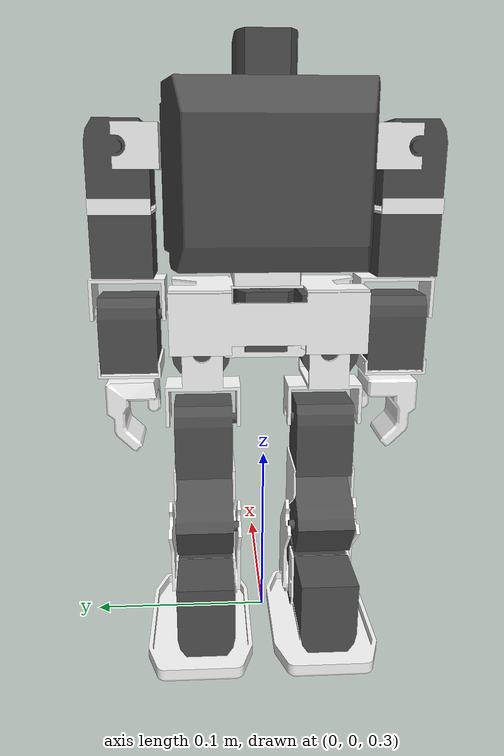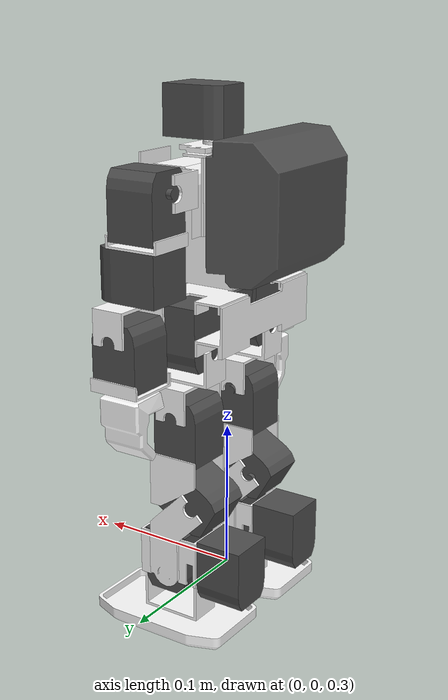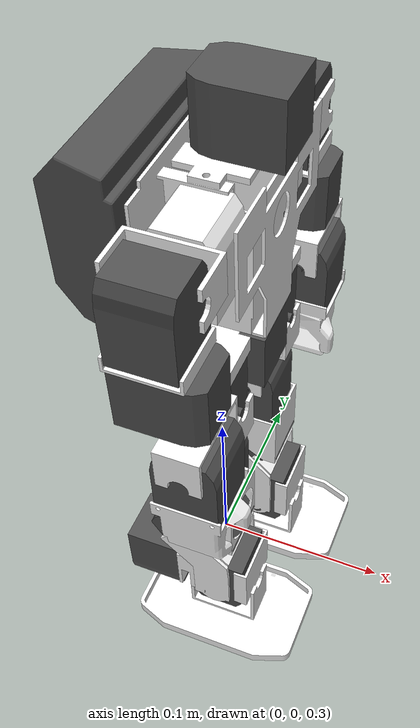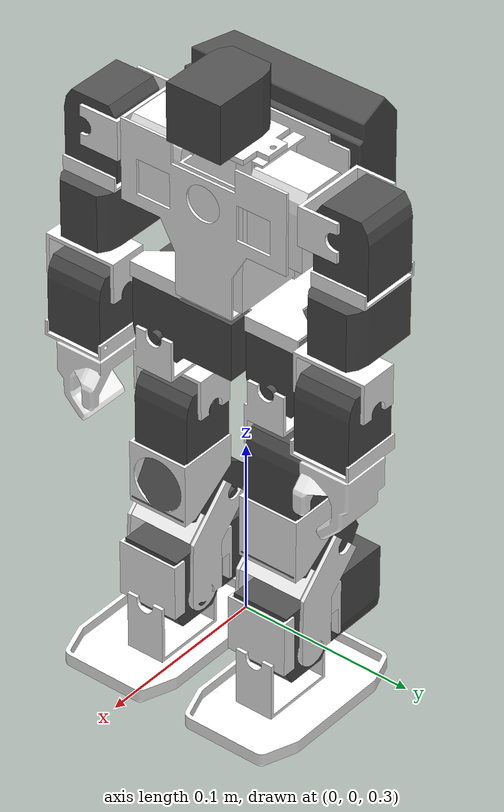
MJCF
<mujoco model="melissa_mjcf">
  <compiler angle="radian" meshdir="assets" autolimits="true" />

  <option timestep="0.002" iterations="30" cone="elliptic" impratio="100" />

  <default>
    <!-- textset -->
    <joint damping="0.1" armature="0.01" frictionloss="0.005"/>
    <position inheritrange="1" timeconst="0.01"/>
    <geom friction="0.4" margin="0.001" condim="3"/>
    <!-- text[textFgroup=0 -->
    <default class="collision">
      <geom group="0"/>
    </default>
    <!-- textFgroup=1(text) -->
    <default class="visual">
      <geom contype="0" conaffinity="0" group="1"/>
    </default>
  </default>

  <asset>
    <material name="metal" rgba=".9 .95 .95 1" />
    <material name="black" rgba="0 0 0 1" />
    <material name="white" rgba="1 1 1 1" />
    <material name="gray" rgba="0.671705 0.692426 0.774270 1" />

    <mesh name="l_leg_lower" file="l_leg_lower.obj" />
    <mesh name="l_foot_middle" file="l_foot_middle.obj" />
    <mesh name="l_arm_upper" file="l_arm_upper.obj" />
    <mesh name="l_leg_upper" file="l_leg_upper.obj" />
    <mesh name="l_hipjoint_lower" file="l_hipjoint_lower.obj" />
    <mesh name="l_ankle" file="l_ankle.obj" />
    <mesh name="c_waist" file="c_waist.obj" />
    <mesh name="l_shoulder" file="l_shoulder.obj" />
    <mesh name="c_chest" file="c_chest.obj" />
    <mesh name="c_head" file="c_head.obj" />
    <mesh name="c_head_base" file="c_head_base.obj" />
    <mesh name="l_arm_upper_dec1" file="l_arm_upper_dec1.obj" />
    <mesh name="l_elbow" file="l_elbow.obj" />
    <mesh name="l_ankle_dec1" file="l_ankle_dec1.obj" />
    <mesh name="l_leg_upper_dec1" file="l_leg_upper_dec1.obj" />
    <mesh name="c_waist_dec1" file="c_waist_dec1.obj" />
    <mesh name="c_waist_dec2" file="c_waist_dec2.obj" />
    <mesh name="c_chest_dec1" file="c_chest_dec1.obj" />
    <mesh name="c_chest_dec2" file="c_chest_dec2.obj" />
    <mesh name="l_arm_lower" file="l_arm_lower.obj" />
    <mesh name="l_hand" file="l_hand.obj" />
    <mesh name="c_chest_dec3" file="c_chest_dec3.obj" />
    <mesh name="r_leg_lower" file="r_leg_lower.obj" />
    <mesh name="r_foot_middle" file="r_foot_middle.obj" />
    <mesh name="r_arm_upper" file="r_arm_upper.obj" />
    <mesh name="r_leg_upper" file="r_leg_upper.obj" />
    <mesh name="r_hipjoint_lower" file="r_hipjoint_lower.obj" />
    <mesh name="r_ankle" file="r_ankle.obj" />
    <mesh name="r_shoulder" file="r_shoulder.obj" />
    <mesh name="r_arm_upper_dec1" file="r_arm_upper_dec1.obj" />
    <mesh name="r_elbow" file="r_elbow.obj" />
    <mesh name="r_ankle_dec1" file="r_ankle_dec1.obj" />
    <mesh name="r_leg_upper_dec1" file="r_leg_upper_dec1.obj" />
    <mesh name="r_arm_lower" file="r_arm_lower.obj" />
    <mesh name="r_hand" file="r_hand.obj" />
  </asset>

  <worldbody>
    <body name="c_waist" pos="0 0 0.5">
      <freejoint />
      <inertial pos="0.003001 0.000264 -0.026784" mass="0.001" fullinertia="0.00003868 0.00001304 0.00003835 0.00000005 -0.00000061 -0.00000004" />
      <!-- text(displaytext) -->
      <geom class="visual" type="mesh" mesh="c_waist" rgba="0.314 0.314 0.314 1.0" group="1"/>
      <!-- text[(text) -->
      <geom class="collision" type="box" size="0.0115 0.046 0.014" pos="0.0095 0.0 -0.0239" quat="1.0 0.0 0.0 0.0" group="3"/>
      <body name="c_chest" pos="0.0 0.0 0.0">
        <joint name="c_chest_yaw" type="hinge" pos="0 0 0" axis="0 0 1" range="-3.141592653589793 3.141592653589793" limited="true" margin="0.0035" armature="0.01" frictionloss="0.005" damping="0.18" />
        <inertial pos="-0.001218 -0.000003 0.028167" mass="0.001" fullinertia="0.00002593 0.00002407 0.00001209 0 -0.00000014 0" />
        <!-- text(displaytext) -->
        <geom class="visual" type="mesh" mesh="c_chest" rgba="1.0 1.0 1.0 1.0" group="1"/>
        <!-- text[(text) -->
        <geom class="collision" type="box" size="0.01505 0.04 0.0335" pos="0.01 0.0001 0.0435" quat="1.0 0.0 0.0 0.0" group="3"/>
        <body name="c_head_base" pos="0.0076 0.0 0.084298">
          <inertial pos="-0.000374 0.000114 0.002888" mass="0.001" fullinertia="0.00000081 0.00000044 0.00000122 0 0 0" />
          <!-- text(displaytext) -->
          <geom class="visual" type="mesh" mesh="c_head_base" rgba="1.0 1.0 1.0 1.0" group="1"/>
          <!-- text[(text) -->
          <body name="c_head" pos="0.0 0.0 0.023">
            <joint name="c_head_yaw" type="hinge" pos="0 0 0" axis="0 0 1" range="-3.141592653589793 3.141592653589793" limited="true" margin="0.0035" armature="0.01" frictionloss="0.005" damping="0.18" />
            <inertial pos="0.009231 0.000876 0.007414" mass="0.001" fullinertia="0.00000352 0.00000437 0.00000383 -0.00000003 0.00000009 -0.00000005" />
            <!-- text(displaytext) -->
            <geom class="visual" type="mesh" mesh="c_head" rgba="0.314 0.314 0.314 1.0" group="1"/>
            <!-- text[(text) -->
            <geom class="collision" type="box" size="0.0215 0.016 0.01305" pos="0.0095 0.0001 0.0034" quat="1.0 0.0 0.0 0.0" group="3"/>
          </body>
        </body>
        <body name="l_shoulder" pos="0.0076 0.0753 0.068898">
          <joint name="l_shoulder_pitch" type="hinge" pos="0 0 0" axis="0 1 0" range="-3.141592653589793 3.141592653589793" limited="true" margin="0.0035" armature="0.01" frictionloss="0.005" damping="0.18" />
          <inertial pos="-0.000895 0.027312 -0.000629" mass="0.001" fullinertia="0.00001607 0.0000083 0.0000174 -0.00000107 -0.00000007 -0" />
          <!-- text(displaytext) -->
          <geom class="visual" type="mesh" mesh="l_shoulder" rgba="1.0 1.0 1.0 1.0" group="1"/>
          <!-- text[(text) -->
          <geom class="collision" type="box" size="0.0215 0.0005 0.011" pos="0.0007 -0.0192 -0.0001" quat="1.0 0.0 0.0 0.0" group="3"/>
          <body name="l_arm_upper" pos="0.0 0.0 0.0">
            <joint name="l_arm_upper_roll" type="hinge" pos="0 0 0" axis="1 0 0" range="-3.141592653589793 3.141592653589793" limited="true" margin="0.0035" armature="0.01" frictionloss="0.005" damping="0.18" />
            <inertial pos="-0.001161 -0.000778 -0.026088" mass="0.001" fullinertia="0.00001565 0.00001676 0.00000709 -0.00000008 0.00000114 0.00000002" />
            <!-- text(displaytext) -->
            <geom class="visual" type="mesh" mesh="l_arm_upper" rgba="0.314 0.314 0.314 1.0" group="1"/>
            <!-- text[(text) -->
            <geom class="collision" type="box" size="0.0115 0.011 0.03605" pos="0.0047 0.0 -0.029" quat="1.0 0.0 0.0 0.0" group="3"/>
            <body name="l_elbow" pos="0.014199 0.0003 -0.09">
              <joint name="l_elbow_yaw" type="hinge" pos="0 0 0" axis="0 0 1" range="-3.141592653589793 3.141592653589793" limited="true" margin="0.0035" armature="0.01" frictionloss="0.005" damping="0.18" />
              <inertial pos="0.000708 -0.004855 0.011432" mass="0.001" fullinertia="0.00000236 0.00000085 0.00000212 0 0 -0.0000003" />
              <!-- text(displaytext) -->
              <geom class="visual" type="mesh" mesh="l_elbow" rgba="1.0 1.0 1.0 1.0" group="1"/>
              <!-- text[(text) -->
              <geom class="collision" type="box" size="0.011 0.0215 0.0005" pos="0.0006 -0.0002 0.0195" quat="1.0 0.0 0.0 0.0" group="3"/>
              <body name="l_arm_lower" pos="0.0 0.0 0.0">
                <joint name="l_arm_lower_pitch" type="hinge" pos="0 0 0" axis="0 1 0" range="-3.141592653589793 3.141592653589793" limited="true" margin="0.0035" armature="0.01" frictionloss="0.005" damping="0.18" />
                <inertial pos="-0.001028 0.007337 -0.009175" mass="0.001" fullinertia="0.00000437 0.00000383 0.00000352 0.00000005 -0.00000003 -0.00000009" />
                <!-- text(displaytext) -->
                <geom class="visual" type="mesh" mesh="l_arm_lower" rgba="0.314 0.314 0.314 1.0" group="1"/>
                <!-- text[(text) -->
                <geom class="collision" type="box" size="0.016 0.00805 0.0165" pos="-0.0002 -0.0017 -0.0094" quat="1.0 0.0 0.0 0.0" group="3"/>
                <body name="l_hand" pos="0.0 0.0 -0.025">
                  <inertial pos="0.000164 -0.000259 -0.008033" mass="0.001" fullinertia="0.00000543 0.00000546 0.00000269 0.00000012 0.00000009 0.00000024" />
                  <!-- text(displaytext) -->
                  <geom class="visual" type="mesh" mesh="l_hand" rgba="1.0 1.0 1.0 1.0" group="1"/>
                  <!-- text[(text) -->
                  <geom class="collision" type="box" size="0.019 0.0175 0.02195" pos="0.0014 -0.0001 -0.0318" quat="1.0 0.0 0.0 0.0" group="3"/>
                </body>
              </body>
            </body>
            <body name="l_arm_upper_dec1" pos="0.0 0.0 0.0">
              <inertial pos="0.00001 -0.000042 0.001632" mass="0.001" fullinertia="0.00000053 0.00000076 0.00000123 0 0 0" />
              <!-- text(displaytext) -->
              <geom class="visual" type="mesh" mesh="l_arm_upper_dec1" rgba="1.0 1.0 1.0 1.0" group="1"/>
              <!-- text[(text) -->
            </body>
          </body>
        </body>
        <body name="r_shoulder" pos="0.0076 -0.0753 0.068898">
          <joint name="r_shoulder_pitch" type="hinge" pos="0 0 0" axis="0 1 0" range="-3.141592653589793 3.141592653589793" limited="true" margin="0.0035" armature="0.01" frictionloss="0.005" damping="0.18" />
          <inertial pos="-0.000895 -0.027312 -0.000629" mass="0.001" fullinertia="0.00001607 0.0000083 0.0000174 0.00000107 -0.00000007 0" />
          <!-- text(displaytext) -->
          <geom class="visual" type="mesh" mesh="r_shoulder" rgba="1.0 1.0 1.0 1.0" group="1"/>
          <!-- text[(text) -->
          <geom class="collision" type="box" size="0.0215 0.0005 0.011" pos="0.0007 0.0192 -0.0001" quat="1.0 0.0 0.0 0.0" group="3"/>
          <body name="r_arm_upper" pos="0.0 -0.0 0.0">
            <joint name="r_arm_upper_roll" type="hinge" pos="0 0 0" axis="1 0 0" range="-3.141592653589793 3.141592653589793" limited="true" margin="0.0035" armature="0.01" frictionloss="0.005" damping="0.18" />
            <inertial pos="-0.001161 0.000778 -0.026088" mass="0.001" fullinertia="0.00001565 0.00001676 0.00000709 0.00000008 0.00000114 -0.00000002" />
            <!-- text(displaytext) -->
            <geom class="visual" type="mesh" mesh="r_arm_upper" rgba="0.314 0.314 0.314 1.0" group="1"/>
            <!-- text[(text) -->
            <geom class="collision" type="box" size="0.0115 0.011 0.03605" pos="0.0047 0.0 -0.029" quat="1.0 0.0 0.0 0.0" group="3"/>
            <body name="r_elbow" pos="0.014199 -0.0003 -0.09">
              <joint name="r_elbow_yaw" type="hinge" pos="0 0 0" axis="0 0 1" range="-3.141592653589793 3.141592653589793" limited="true" margin="0.0035" armature="0.01" frictionloss="0.005" damping="0.18" />
              <inertial pos="0.000708 0.004855 0.011432" mass="0.001" fullinertia="0.00000236 0.00000085 0.00000212 0 0 0.0000003" />
              <!-- text(displaytext) -->
              <geom class="visual" type="mesh" mesh="r_elbow" rgba="1.0 1.0 1.0 1.0" group="1"/>
              <!-- text[(text) -->
              <geom class="collision" type="box" size="0.011 0.0215 0.0005" pos="0.0006 0.0002 0.0195" quat="1.0 0.0 0.0 0.0" group="3"/>
              <body name="r_arm_lower" pos="0.0 -0.0 0.0">
                <joint name="r_arm_lower_pitch" type="hinge" pos="0 0 0" axis="0 1 0" range="-3.141592653589793 3.141592653589793" limited="true" margin="0.0035" armature="0.01" frictionloss="0.005" damping="0.18" />
                <inertial pos="-0.001028 -0.007337 -0.009175" mass="0.001" fullinertia="0.00000437 0.00000383 0.00000352 -0.00000005 -0.00000003 0.00000009" />
                <!-- text(displaytext) -->
                <geom class="visual" type="mesh" mesh="r_arm_lower" rgba="0.314 0.314 0.314 1.0" group="1"/>
                <!-- text[(text) -->
                <geom class="collision" type="box" size="0.016 0.00805 0.0165" pos="-0.0002 0.0017 -0.0094" quat="1.0 0.0 0.0 0.0" group="3"/>
                <body name="r_hand" pos="0.0 -0.0 -0.025">
                  <inertial pos="0.000164 0.000259 -0.008033" mass="0.001" fullinertia="0.00000543 0.00000546 0.00000269 -0.00000012 0.00000009 -0.00000024" />
                  <!-- text(displaytext) -->
                  <geom class="visual" type="mesh" mesh="r_hand" rgba="1.0 1.0 1.0 1.0" group="1"/>
                  <!-- text[(text) -->
                  <geom class="collision" type="box" size="0.019 0.0175 0.02195" pos="0.0014 0.0001 -0.0318" quat="1.0 0.0 0.0 0.0" group="3"/>
                </body>
              </body>
            </body>
            <body name="r_arm_upper_dec1" pos="0.0 -0.0 0.0">
              <inertial pos="0.00001 0.000042 0.001632" mass="0.001" fullinertia="0.00000053 0.00000076 0.00000123 0 0 0" />
              <!-- text(displaytext) -->
              <geom class="visual" type="mesh" mesh="r_arm_upper_dec1" rgba="1.0 1.0 1.0 1.0" group="1"/>
              <!-- text[(text) -->
            </body>
          </body>
        </body>
        <body name="c_chest_dec1" pos="0.032 0.0 0.0">
          <inertial pos="-0.000818 0 -0.005248" mass="0.001" fullinertia="0.00001457 0.00000503 0.00000954 0 0 0" />
          <!-- text(displaytext) -->
          <geom class="visual" type="mesh" mesh="c_chest_dec1" rgba="1.0 1.0 1.0 1.0" group="1"/>
          <!-- text[(text) -->
        </body>
        <body name="c_chest_dec1_1" pos="-0.015 0.0 0.0">
          <inertial pos="-0.000818 0 -0.005248" mass="0.001" fullinertia="0.00001457 0.00000503 0.00000954 0 0 0" />
          <!-- text(displaytext) -->
          <geom class="visual" type="mesh" mesh="c_chest_dec2" rgba="1.0 1.0 1.0 1.0" group="1"/>
          <!-- text[(text) -->
        </body>
        <body name="c_chest_dec3" pos="-0.018 0.0 0.02">
          <inertial pos="-0.015229 -0.000215 0.031462" mass="0.001" fullinertia="0.00006567 0.00003858 0.00004764 0.00000002 -0.00000012 0.0000005" />
          <!-- text(displaytext) -->
          <geom class="visual" type="mesh" mesh="c_chest_dec3" rgba="0.314 0.314 0.314 1.0" group="1"/>
          <!-- text[(text) -->
          <geom class="collision" type="box" size="0.0164 0.04755 0.0378" pos="-0.0216 -0.0002 0.0341" quat="1.0 0.0 0.0 0.0" group="3"/>
        </body>
      </body>
      <body name="l_hipjoint_lower" pos="0.007178 0.03441 -0.036066">
        <joint name="l_hipjoint_lower_roll" type="hinge" pos="0 0 0" axis="1 0 0" range="-3.141592653589793 3.141592653589793" limited="true" margin="0.0035" armature="0.01" frictionloss="0.005" damping="0.18" />
        <inertial pos="0.004372 0.004372 -0.022" mass="0.001" fullinertia="0.00000362 0.00000362 0.00000305 0.00000001 -0.00000048 0.00000048" />
        <!-- text(displaytext) -->
        <geom class="visual" type="mesh" mesh="l_hipjoint_lower" rgba="1.0 1.0 1.0 1.0" group="1"/>
        <!-- text[(text) -->
        <geom class="collision" type="box" size="0.015 0.015 0.002" pos="0.0 0.0 -0.022" quat="0.9999765121843216 0.0 0.0 0.006853836858232788" group="3"/>
        <body name="l_leg_upper" pos="0.0 0.0 -0.044">
          <joint name="l_leg_upper_pitch" type="hinge" pos="0 0 0" axis="0 1 0" range="-3.141592653589793 3.141592653589793" limited="true" margin="0.0035" armature="0.01" frictionloss="0.005" damping="0.18" />
          <inertial pos="0.00023 0.000936 -0.033561" mass="0.001" fullinertia="0.00001903 0.00002006 0.00000887 -0.00000026 -0.00000061 0.00000058" />
          <!-- text(displaytext) -->
          <geom class="visual" type="mesh" mesh="l_leg_upper" rgba="0.314 0.314 0.314 1.0" group="1"/>
          <!-- text[(text) -->
          <geom class="collision" type="box" size="0.0144 0.0098 0.0379" pos="-0.0048 0.0 -0.0309" quat="0.9961946982539522 -0.00939290229655972 0.08574801400269064 0.012456911806646615" group="3"/>
          <body name="l_leg_lower" pos="-0.014455 0.0 -0.057838">
            <joint name="l_leg_lower_pitch" type="hinge" pos="0 0 0" axis="0 1 0" range="-3.141592653589793 3.141592653589793" limited="true" margin="0.0035" armature="0.01" frictionloss="0.005" damping="0.18" />
            <inertial pos="0.009421 0.017241 -0.018488" mass="0.001" fullinertia="0.00000503 0.00000575 0.00000278 0.00000054 0.00000139 0.00000032" />
            <!-- text(displaytext) -->
            <geom class="visual" type="mesh" mesh="l_leg_lower" rgba="1.0 1.0 1.0 1.0" group="1"/>
            <!-- text[(text) -->
            <geom class="collision" type="box" size="0.001 0.01525 0.00775" pos="0.0265 0.0 -0.0139" quat="0.9999765121843216 0.0 -0.006853836858232788 0.0" group="3"/>
            <body name="l_ankle" pos="0.022945 0.0 -0.055438">
              <joint name="l_ankle_pitch" type="hinge" pos="0 0 0" axis="0 1 0" range="-3.141592653589793 3.141592653589793" limited="true" margin="0.0035" armature="0.01" frictionloss="0.005" damping="0.18" />
              <inertial pos="-0.021242 -0.002977 0.009662" mass="0.001" fullinertia="0.00001041 0.00002382 0.00002286 -0.00000041 -0.00000075 -0.00000022" />
              <!-- text(displaytext) -->
              <geom class="visual" type="mesh" mesh="l_ankle" rgba="0.314 0.314 0.314 1.0" group="1"/>
              <!-- text[(text) -->
              <geom class="collision" type="box" size="0.03555 0.01305 0.0165" pos="-0.0196 0.0015 0.0094" quat="1.0 0.0 0.0 0.0" group="3"/>
              <body name="l_foot_middle" pos="0.0 0.0 0.0">
                <joint name="l_foot_middle_roll" type="hinge" pos="0 0 0" axis="1 0 0" range="-3.141592653589793 3.141592653589793" limited="true" margin="0.0035" armature="0.01" frictionloss="0.005" damping="0.18" />
                <inertial pos="-0.000293 0.003105 -0.027913" mass="0.001" fullinertia="0.00000001 0.00000002 0.00000003 0 0 0" />
                <!-- text(displaytext) -->
                <geom class="visual" type="mesh" mesh="l_foot_middle" rgba="1.0 1.0 1.0 1.0" group="1"/>
                <!-- text[(text) -->
                <geom class="collision" type="box" size="0.05 0.0315 0.005" pos="-0.0002 0.004 -0.031" quat="1.0 0.0 0.0 0.0" group="3"/>
              </body>
              <body name="l_ankle_dec1" pos="0.0 0.0 0.0">
                <inertial pos="-0.005843 -0.000048 0.013037" mass="0.001" fullinertia="0.00000228 0.00000384 0.00000451 -0.00000003 0.00000009 0" />
                <!-- text(displaytext) -->
                <geom class="visual" type="mesh" mesh="l_ankle_dec1" rgba="1.0 1.0 1.0 1.0" group="1"/>
                <!-- text[(text) -->
              </body>
            </body>
          </body>
          <body name="l_leg_upper_1" pos="0.0 0.0 0.0">
            <inertial pos="0.00023 0.000936 -0.033561" mass="0.001" fullinertia="0.00001903 0.00002006 0.00000887 -0.00000026 -0.00000061 0.00000058" />
            <!-- text(displaytext) -->
            <geom class="visual" type="mesh" mesh="l_leg_upper_dec1" rgba="1.0 1.0 1.0 1.0" group="1"/>
            <!-- text[(text) -->
          </body>
        </body>
      </body>
      <body name="r_hipjoint_lower" pos="0.007178 -0.034222 -0.036065">
        <joint name="r_hipjoint_lower_roll" type="hinge" pos="0 0 0" axis="1 0 0" range="-3.141592653589793 3.141592653589793" limited="true" margin="0.0035" armature="0.01" frictionloss="0.005" damping="0.18" />
        <inertial pos="0.004372 -0.004372 -0.022" mass="0.001" fullinertia="0.00000362 0.00000362 0.00000305 -0.00000001 -0.00000048 -0.00000048" />
        <!-- text(displaytext) -->
        <geom class="visual" type="mesh" mesh="r_hipjoint_lower" rgba="1.0 1.0 1.0 1.0" group="1"/>
        <!-- text[(text) -->
        <geom class="collision" type="box" size="0.015 0.015 0.002" pos="0.0 0.0 -0.022" quat="0.9999765121843216 0.0 0.0 -0.006853836858232788" group="3"/>
        <body name="r_leg_upper" pos="0.0 -0.0 -0.044">
          <joint name="r_leg_upper_pitch" type="hinge" pos="0 0 0" axis="0 1 0" range="-3.141592653589793 3.141592653589793" limited="true" margin="0.0035" armature="0.01" frictionloss="0.005" damping="0.18" />
          <inertial pos="0.00023 -0.000936 -0.033561" mass="0.001" fullinertia="0.00001903 0.00002006 0.00000887 0.00000026 -0.00000061 -0.00000058" />
          <!-- text(displaytext) -->
          <geom class="visual" type="mesh" mesh="r_leg_upper" rgba="0.314 0.314 0.314 1.0" group="1"/>
          <!-- text[(text) -->
          <geom class="collision" type="box" size="0.0144 0.0098 0.0379" pos="-0.0048 0.0 -0.0309" quat="0.9961946982539522 0.00939290229655972 0.08574801400269064 -0.012456911806646615" group="3"/>
          <body name="r_leg_lower" pos="-0.014455 -0.0 -0.057838">
            <joint name="r_leg_lower_pitch" type="hinge" pos="0 0 0" axis="0 1 0" range="-3.141592653589793 3.141592653589793" limited="true" margin="0.0035" armature="0.01" frictionloss="0.005" damping="0.18" />
            <inertial pos="0.009421 -0.017241 -0.018488" mass="0.001" fullinertia="0.00000503 0.00000575 0.00000278 -0.00000054 0.00000139 -0.00000032" />
            <!-- text(displaytext) -->
            <geom class="visual" type="mesh" mesh="r_leg_lower" rgba="1.0 1.0 1.0 1.0" group="1"/>
            <!-- text[(text) -->
            <geom class="collision" type="box" size="0.001 0.01525 0.00775" pos="0.0265 0.0 -0.0139" quat="0.9999765121843216 -0.0 -0.006853836858232788 -0.0" group="3"/>
            <body name="r_ankle" pos="0.022945 -0.0 -0.055438">
              <joint name="r_ankle_pitch" type="hinge" pos="0 0 0" axis="0 1 0" range="-3.141592653589793 3.141592653589793" limited="true" margin="0.0035" armature="0.01" frictionloss="0.005" damping="0.18" />
              <inertial pos="-0.021242 0.002977 0.009662" mass="0.001" fullinertia="0.00001041 0.00002382 0.00002286 0.00000041 -0.00000075 0.00000022" />
              <!-- text(displaytext) -->
              <geom class="visual" type="mesh" mesh="r_ankle" rgba="0.314 0.314 0.314 1.0" group="1"/>
              <!-- text[(text) -->
              <geom class="collision" type="box" size="0.03555 0.01305 0.0165" pos="-0.0196 -0.0015 0.0094" quat="1.0 0.0 0.0 0.0" group="3"/>
              <body name="r_foot_middle" pos="0.0 -0.0 0.0">
                <joint name="r_foot_middle_roll" type="hinge" pos="0 0 0" axis="1 0 0" range="-3.141592653589793 3.141592653589793" limited="true" margin="0.0035" armature="0.01" frictionloss="0.005" damping="0.18" />
                <inertial pos="-0.000293 -0.003105 -0.027913" mass="0.001" fullinertia="0.00000001 0.00000002 0.00000003 0 0 0" />
                <!-- text(displaytext) -->
                <geom class="visual" type="mesh" mesh="r_foot_middle" rgba="1.0 1.0 1.0 1.0" group="1"/>
                <!-- text[(text) -->
                <geom class="collision" type="box" size="0.05 0.0315 0.005" pos="-0.0002 -0.004 -0.031" quat="1.0 0.0 0.0 0.0" group="3"/>
              </body>
              <body name="r_ankle_dec1" pos="0.0 -0.0 0.0">
                <inertial pos="-0.005843 0.000048 0.013037" mass="0.001" fullinertia="0.00000228 0.00000384 0.00000451 0.00000003 0.00000009 -0" />
                <!-- text(displaytext) -->
                <geom class="visual" type="mesh" mesh="r_ankle_dec1" rgba="1.0 1.0 1.0 1.0" group="1"/>
                <!-- text[(text) -->
              </body>
            </body>
          </body>
          <body name="r_leg_upper_1" pos="0.0 -0.0 0.0">
            <inertial pos="0.00023 -0.000936 -0.033561" mass="0.001" fullinertia="0.00001903 0.00002006 0.00000887 0.00000026 -0.00000061 -0.00000058" />
            <!-- text(displaytext) -->
            <geom class="visual" type="mesh" mesh="r_leg_upper_dec1" rgba="1.0 1.0 1.0 1.0" group="1"/>
            <!-- text[(text) -->
          </body>
        </body>
      </body>
      <body name="c_waist_dec1" pos="0.0 0.0 0.0">
        <inertial pos="-0.010914 -0.000011 -0.014359" mass="0.001" fullinertia="0.00003328 0.00001389 0.00003866 0 -0.00000323 -0" />
        <!-- text(displaytext) -->
        <geom class="visual" type="mesh" mesh="c_waist_dec1" rgba="1.0 1.0 1.0 1.0" group="1"/>
        <!-- text[(text) -->
      </body>
      <body name="c_waist_dec2" pos="-0.0094 0.0 -0.035">
        <inertial pos="0.000612 -0.00006 -0.000384" mass="0.001" fullinertia="0.00000025 0.00000002 0.00000023 0 0 0" />
        <!-- text(displaytext) -->
        <geom class="visual" type="mesh" mesh="c_waist_dec2" rgba="1.0 1.0 1.0 1.0" group="1"/>
        <!-- text[(text) -->
      </body>
    </body>
  </worldbody>

  <actuator>
    <position name="c_chest_actuator" joint="c_chest_yaw" gear="1" kp="100" kv="1" forcerange="-3.001 3.001" forcelimited="true"/>
    <position name="c_head_actuator" joint="c_head_yaw" gear="1" kp="100" kv="1" forcerange="-3.001 3.001" forcelimited="true"/>
    <position name="l_shoulder_actuator" joint="l_shoulder_pitch" gear="1" kp="100" kv="1" forcerange="-3.001 3.001" forcelimited="true"/>
    <position name="l_arm_upper_actuator" joint="l_arm_upper_roll" gear="1" kp="100" kv="1" forcerange="-3.001 3.001" forcelimited="true"/>
    <position name="l_elbow_actuator" joint="l_elbow_yaw" gear="1" kp="100" kv="1" forcerange="-3.001 3.001" forcelimited="true"/>
    <position name="l_arm_lower_actuator" joint="l_arm_lower_pitch" gear="1" kp="100" kv="1" forcerange="-3.001 3.001" forcelimited="true"/>
    <position name="r_shoulder_actuator" joint="r_shoulder_pitch" gear="1" kp="100" kv="1" forcerange="-3.001 3.001" forcelimited="true"/>
    <position name="r_arm_upper_actuator" joint="r_arm_upper_roll" gear="1" kp="100" kv="1" forcerange="-3.001 3.001" forcelimited="true"/>
    <position name="r_elbow_actuator" joint="r_elbow_yaw" gear="1" kp="100" kv="1" forcerange="-3.001 3.001" forcelimited="true"/>
    <position name="r_arm_lower_actuator" joint="r_arm_lower_pitch" gear="1" kp="100" kv="1" forcerange="-3.001 3.001" forcelimited="true"/>
    <position name="l_hipjoint_lower_actuator" joint="l_hipjoint_lower_roll" gear="1" kp="100" kv="1" forcerange="-3.001 3.001" forcelimited="true"/>
    <position name="l_leg_upper_actuator" joint="l_leg_upper_pitch" gear="1" kp="100" kv="1" forcerange="-3.001 3.001" forcelimited="true"/>
    <position name="l_leg_lower_actuator" joint="l_leg_lower_pitch" gear="1" kp="100" kv="1" forcerange="-3.001 3.001" forcelimited="true"/>
    <position name="l_ankle_actuator" joint="l_ankle_pitch" gear="1" kp="100" kv="1" forcerange="-3.001 3.001" forcelimited="true"/>
    <position name="l_foot_middle_actuator" joint="l_foot_middle_roll" gear="1" kp="100" kv="1" forcerange="-3.001 3.001" forcelimited="true"/>
    <position name="r_hipjoint_lower_actuator" joint="r_hipjoint_lower_roll" gear="1" kp="100" kv="1" forcerange="-3.001 3.001" forcelimited="true"/>
    <position name="r_leg_upper_actuator" joint="r_leg_upper_pitch" gear="1" kp="100" kv="1" forcerange="-3.001 3.001" forcelimited="true"/>
    <position name="r_leg_lower_actuator" joint="r_leg_lower_pitch" gear="1" kp="100" kv="1" forcerange="-3.001 3.001" forcelimited="true"/>
    <position name="r_ankle_actuator" joint="r_ankle_pitch" gear="1" kp="100" kv="1" forcerange="-3.001 3.001" forcelimited="true"/>
    <position name="r_foot_middle_actuator" joint="r_foot_middle_roll" gear="1" kp="100" kv="1" forcerange="-3.001 3.001" forcelimited="true"/>
  </actuator>

  <sensor>
    <!-- Add sensors here if needed -->
  </sensor>
</mujoco>
